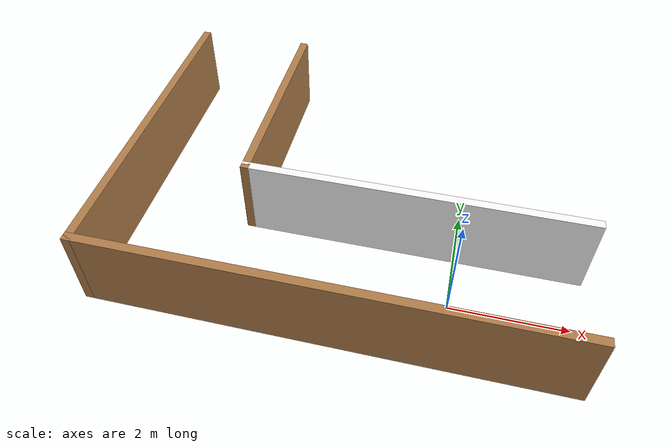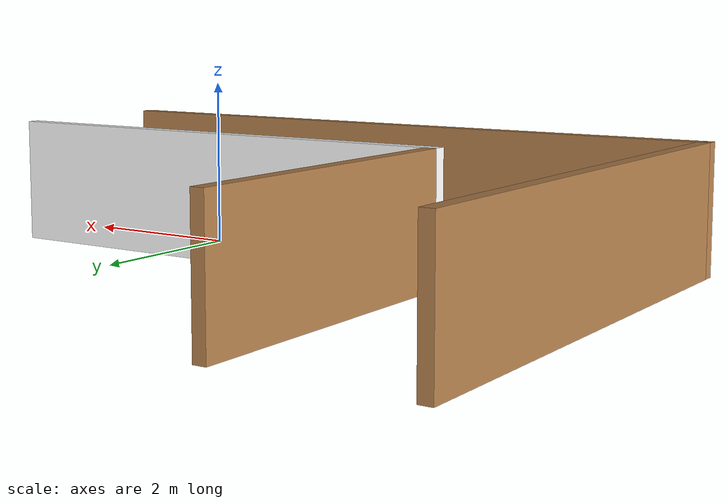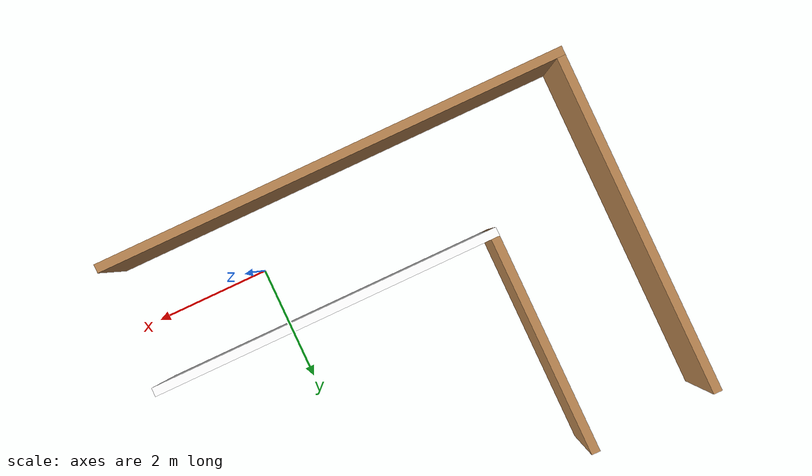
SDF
<?xml version='1.0'?>
<sdf version='1.6'>
  <model name='turtlebot_model1'>
    <pose frame=''>-1.89 1.856 0 0 -0 0</pose>
    <link name='Wall_34'>
      <collision name='Wall_34_Collision'>
        <geometry>
          <box>
            <size>6 0.15 1.5</size>
          </box>
        </geometry>
        <pose frame=''>0 0 0.75 0 -0 0</pose>
      </collision>
      <visual name='Wall_34_Visual'>
        <pose frame=''>0 0 0.75 0 -0 0</pose>
        <geometry>
          <box>
            <size>6 0.15 1.5</size>
          </box>
        </geometry>
        <material>
          <script>
                <uri>model://turtlebot_model1/materials/scripts</uri>
            	<uri>model://turtlebot_model1/materials/textures</uri>
		<name>wallTexture/Image</name>
          </script>
          <ambient>1 1 1 1</ambient>
        </material>
        <meta>
          <layer>0</layer>
        </meta>
      </visual>
      <pose frame=''>1.075 -0.8 0 0 -0 3.14159</pose>
    </link>
    <link name='Wall_36'>
      <collision name='Wall_36_Collision'>
        <geometry>
          <box>
            <size>8.15 0.15 1.5</size>
          </box>
        </geometry>
        <pose frame=''>0 0 0.75 0 -0 0</pose>
      </collision>
      <visual name='Wall_36_Visual'>
        <pose frame=''>0 0 0.75 0 -0 0</pose>
        <geometry>
          <box>
            <size>8.15 0.15 1.5</size>
          </box>
        </geometry>
        <material>
          <script>
            <uri>file://media/materials/scripts/gazebo.material</uri>
            <name>Gazebo/Wood</name>
          </script>
          <ambient>1 1 1 1</ambient>
        </material>
        <meta>
          <layer>0</layer>
        </meta>
      </visual>
      <pose frame=''>0 -2.95 0 0 -0 3.14159</pose>
    </link>
    <link name='Wall_38'>
      <collision name='Wall_38_Collision'>
        <geometry>
          <box>
            <size>6 0.15 1.5</size>
          </box>
        </geometry>
        <pose frame=''>0 0 0.75 0 -0 0</pose>
      </collision>
      <visual name='Wall_38_Visual'>
        <pose frame=''>0 0 0.75 0 -0 0</pose>
        <geometry>
          <box>
            <size>6 0.15 1.5</size>
          </box>
        </geometry>
        <material>
          <script>
            <uri>file://media/materials/scripts/gazebo.material</uri>
            <name>Gazebo/Wood</name>
          </script>
          <ambient>1 1 1 1</ambient>
        </material>
        <meta>
          <layer>0</layer>
        </meta>
      </visual>
      <pose frame=''>-4 -0.025 0 0 -0 1.5708</pose>
    </link>
    <link name='Wall_40'>
      <collision name='Wall_40_Collision'>
        <geometry>
          <box>
            <size>3.9 0.15 1.5</size>
          </box>
        </geometry>
        <pose frame=''>0 0 0.75 0 -0 0</pose>
      </collision>
      <visual name='Wall_40_Visual'>
        <pose frame=''>0 0 0.75 0 -0 0</pose>
        <geometry>
          <box>
            <size>3.9 0.15 1.5</size>
          </box>
        </geometry>
        <material>
          <script>
            <uri>file://media/materials/scripts/gazebo.material</uri>
            <name>Gazebo/Wood</name>
          </script>
          <ambient>1 1 1 1</ambient>
        </material>
        <meta>
          <layer>0</layer>
        </meta>
      </visual>
      <pose frame=''>-1.85 1.075 0 0 -0 1.5708</pose>
    </link>
    <static>1</static>
  </model>
</sdf>
